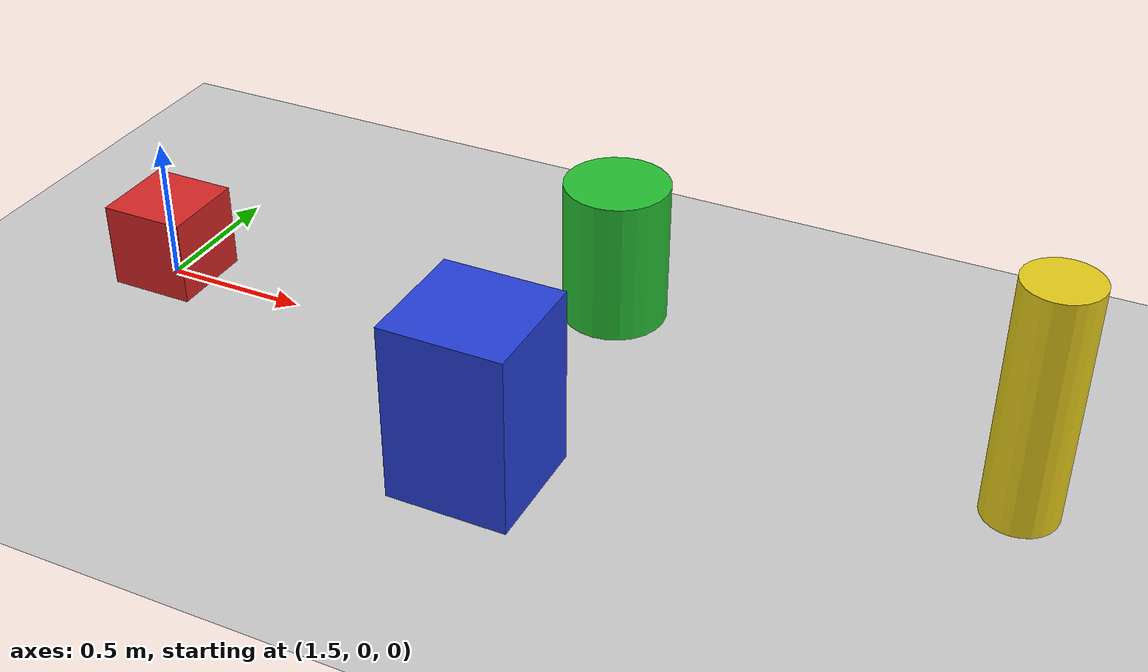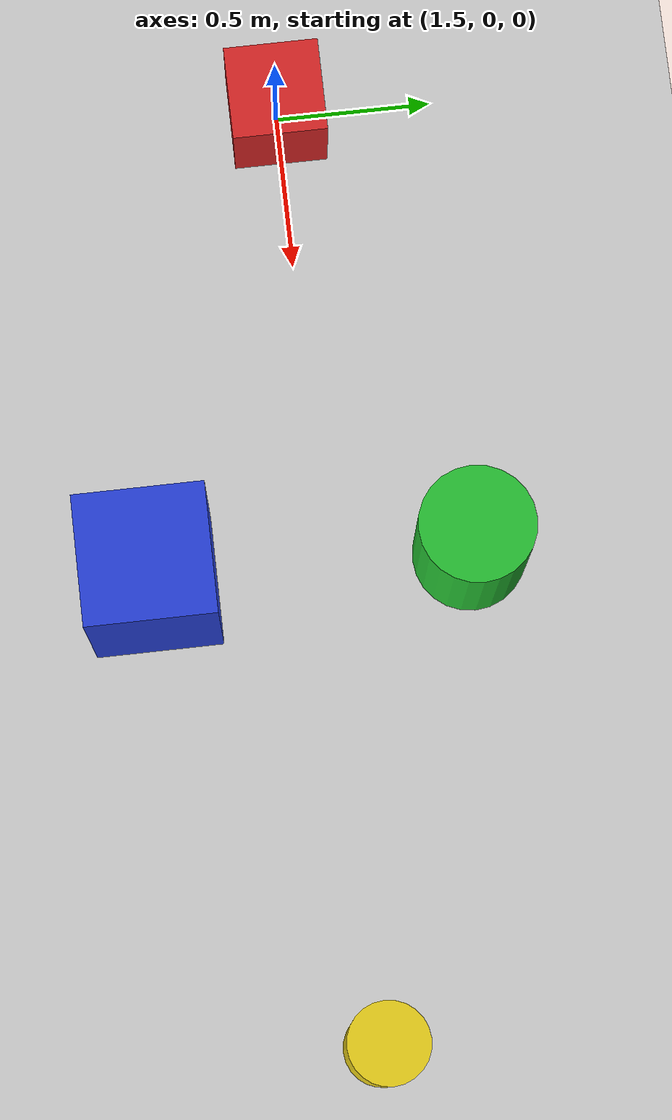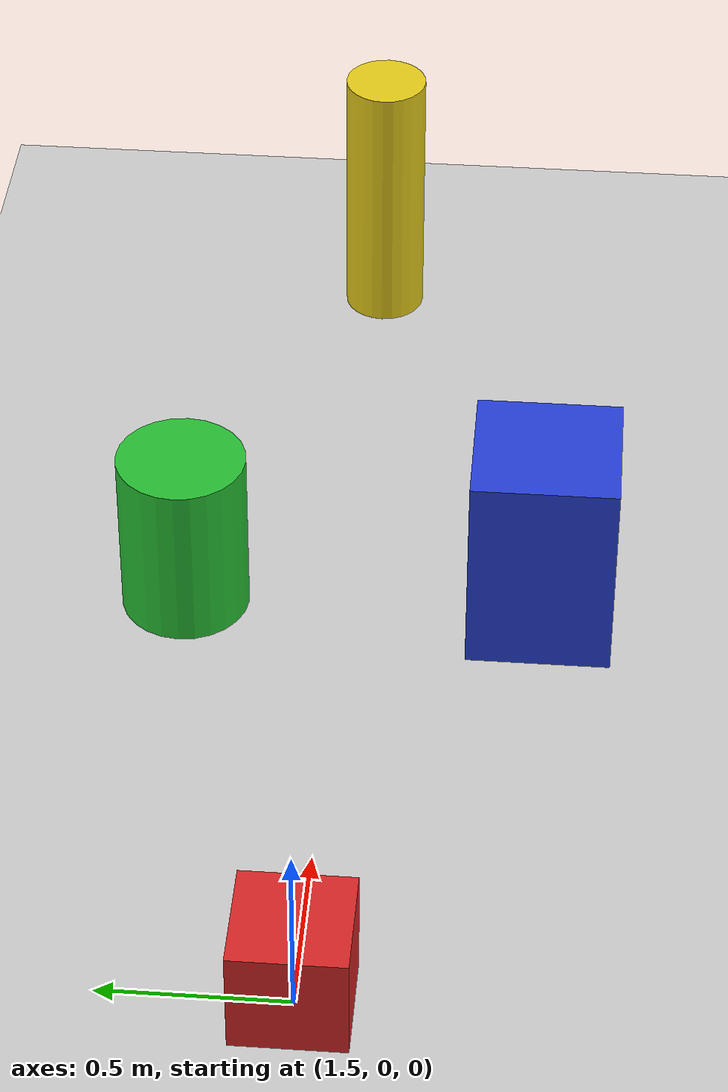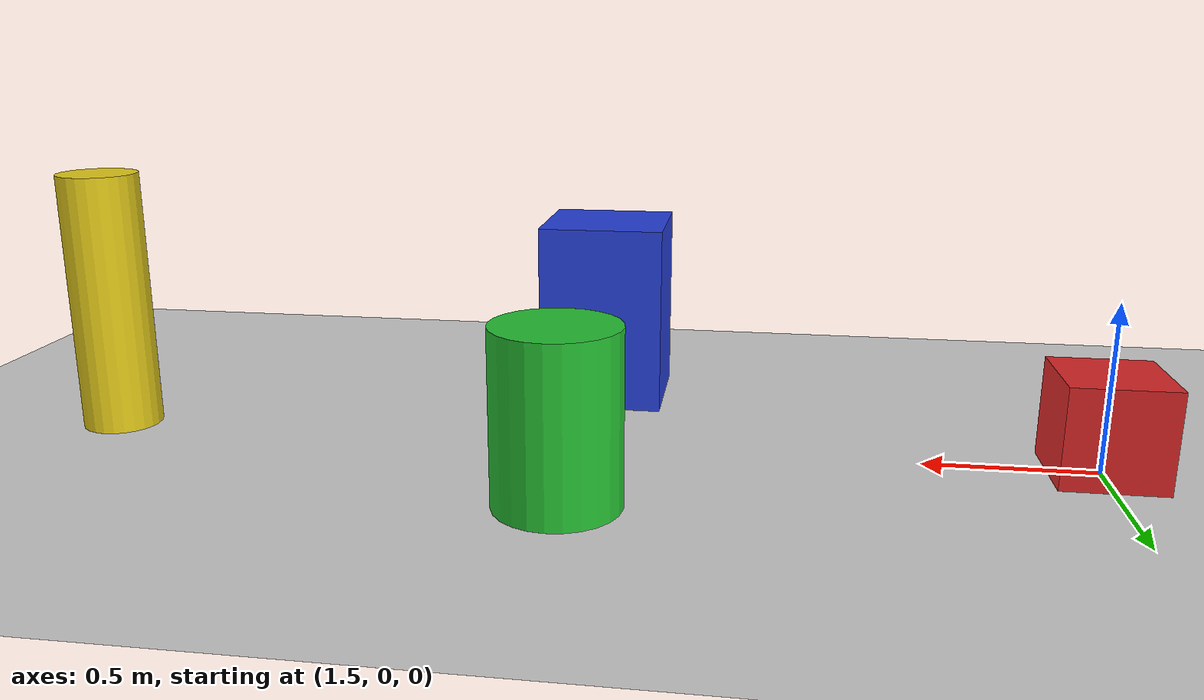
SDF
<?xml version="1.0"?>
<sdf version="1.9">
  <world name="quadruped_objects">
    <physics name="1ms" type="ignored">
      <max_step_size>0.001</max_step_size>
      <real_time_factor>1.0</real_time_factor>
    </physics>

    <plugin filename="gz-sim-physics-system"
            name="gz::sim::systems::Physics"/>
    <plugin filename="gz-sim-user-commands-system"
            name="gz::sim::systems::UserCommands"/>
    <plugin filename="gz-sim-scene-broadcaster-system"
            name="gz::sim::systems::SceneBroadcaster"/>
    <plugin filename="gz-sim-sensors-system"
            name="gz::sim::systems::Sensors">
      <render_engine>ogre2</render_engine>
    </plugin>
    <plugin filename="gz-sim-contact-system"
            name="gz::sim::systems::Contact"/>

    <scene>
      <ambient>1 1 1 1</ambient>
      <background>0.3 0.7 0.9 1</background>
      <shadows>false</shadows>
    </scene>

    <light type="directional" name="sun">
      <pose>0 0 10 0 0 0</pose>
      <diffuse>0.8 0.8 0.8 1</diffuse>
      <specular>0.2 0.2 0.2 1</specular>
      <direction>-0.5 0.1 -0.9</direction>
    </light>

    <model name="ground_plane">
      <static>true</static>
      <link name="link">
        <collision name="collision">
          <geometry>
            <plane><normal>0 0 1</normal><size>100 100</size></plane>
          </geometry>
        </collision>
        <visual name="visual">
          <geometry>
            <plane><normal>0 0 1</normal><size>100 100</size></plane>
          </geometry>
          <material>
            <ambient>0.8 0.8 0.8 1</ambient>
            <diffuse>0.8 0.8 0.8 1</diffuse>
          </material>
        </visual>
      </link>
    </model>

    <model name="caixa_vermelha">
      <static>true</static>
      <pose>1.5  0.0  0.15 0 0 0</pose>
      <link name="link">
        <collision name="collision">
          <geometry><box><size>0.3 0.3 0.3</size></box></geometry>
        </collision>
        <visual name="visual">
          <geometry><box><size>0.3 0.3 0.3</size></box></geometry>
          <material>
            <ambient>0.85 0.15 0.15 1</ambient>
            <diffuse>0.85 0.15 0.15 1</diffuse>
          </material>
        </visual>
      </link>
    </model>

    <model name="cilindro_verde">
      <static>true</static>
      <pose>3.0  0.45 0.25 0 0 0</pose>
      <link name="link">
        <collision name="collision">
          <geometry><cylinder><radius>0.18</radius><length>0.5</length></cylinder></geometry>
        </collision>
        <visual name="visual">
          <geometry><cylinder><radius>0.18</radius><length>0.5</length></cylinder></geometry>
          <material>
            <ambient>0.15 0.75 0.2 1</ambient>
            <diffuse>0.15 0.75 0.2 1</diffuse>
          </material>
        </visual>
      </link>
    </model>

    <model name="caixa_azul">
      <static>true</static>
      <pose>3.0 -0.55 0.30 0 0 0</pose>
      <link name="link">
        <collision name="collision">
          <geometry><box><size>0.4 0.4 0.6</size></box></geometry>
        </collision>
        <visual name="visual">
          <geometry><box><size>0.4 0.4 0.6</size></box></geometry>
          <material>
            <ambient>0.15 0.25 0.85 1</ambient>
            <diffuse>0.15 0.25 0.85 1</diffuse>
          </material>
        </visual>
      </link>
    </model>

    <model name="cilindro_amarelo">
      <static>true</static>
      <pose>4.5  0.0  0.40 0 0 0</pose>
      <link name="link">
        <collision name="collision">
          <geometry><cylinder><radius>0.12</radius><length>0.8</length></cylinder></geometry>
        </collision>
        <visual name="visual">
          <geometry><cylinder><radius>0.12</radius><length>0.8</length></cylinder></geometry>
          <material>
            <ambient>0.9 0.8 0.1 1</ambient>
            <diffuse>0.9 0.8 0.1 1</diffuse>
          </material>
        </visual>
      </link>
    </model>
  </world>
</sdf>
